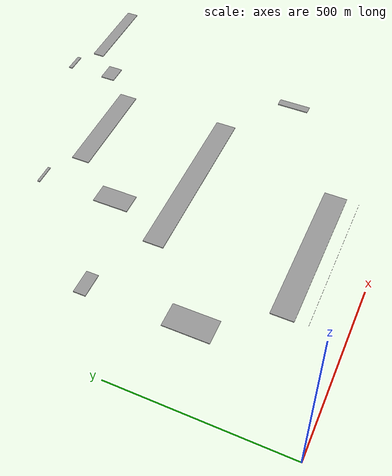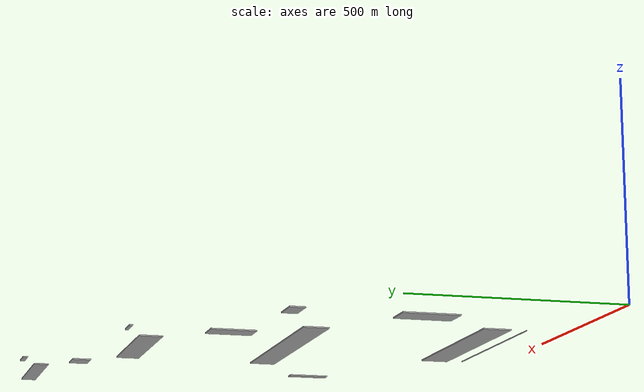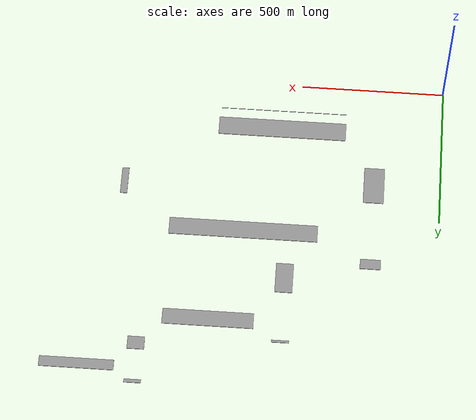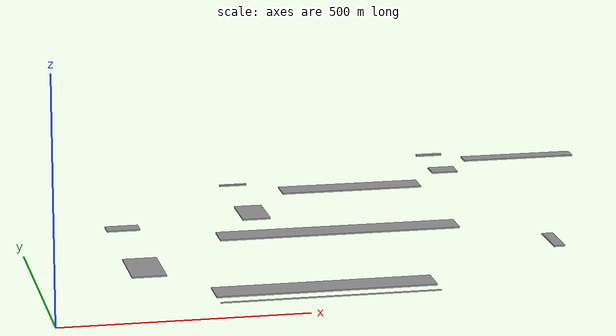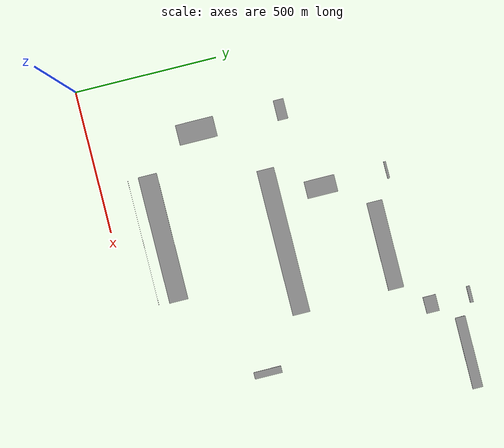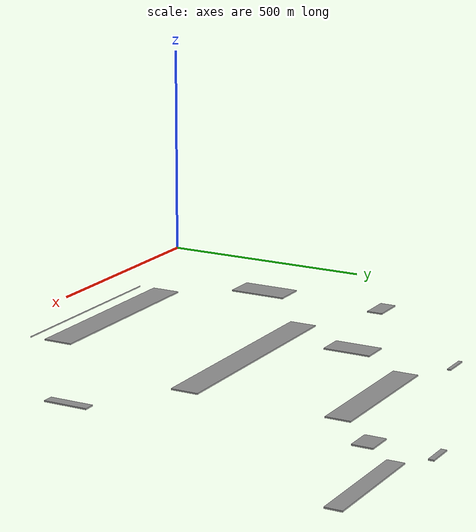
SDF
<?xml version="1.0" encoding="UTF-8"?>
<sdf version="1.6">
    <model name="new_model">
        <pose frame="">0 0 0 0 0 0</pose>
        <link name="wall2">
            <collision name="wall2_collision">
                <geometry>
                    <box>
                        <size>447 0 3</size>
                    </box>
                </geometry>
                <pose frame="">281 50 0 0 0 0</pose>
            </collision>
            <visual name="Wall_2_Visual">
                <pose frame="">281 50 0 0 0 0</pose>
                <geometry>
                    <box>
                        <size>447 0 3</size>
                    </box>
                </geometry>
                <material>
                    <script>
                        <uri>file://media/materials/scripts/gazebo.material</uri>
                        <name>Gazebo/Grey</name>
                    </script>
                    <ambient>1 1 1 1</ambient>
                </material>
                <meta>
                    <layer>0</layer>
                </meta>
            </visual>
            <pose frame="">281 50 0 0 0 0</pose>
        </link>
        <static>1</static>
        <link name="wall3">
            <collision name="wall3_collision">
                <geometry>
                    <box>
                        <size>448 66 3</size>
                    </box>
                </geometry>
                <pose frame="">281 85 0 0 0 0</pose>
            </collision>
            <visual name="Wall_3_Visual">
                <pose frame="">281 85 0 0 0 0</pose>
                <geometry>
                    <box>
                        <size>448 66 3</size>
                    </box>
                </geometry>
                <material>
                    <script>
                        <uri>file://media/materials/scripts/gazebo.material</uri>
                        <name>Gazebo/Grey</name>
                    </script>
                    <ambient>1 1 1 1</ambient>
                </material>
                <meta>
                    <layer>0</layer>
                </meta>
            </visual>
            <pose frame="">281 85 0 0 0 0</pose>
        </link>
        <static>1</static>
        <link name="wall4">
            <collision name="wall4_collision">
                <geometry>
                    <box>
                        <size>71 133 3</size>
                    </box>
                </geometry>
                <pose frame="">115 186 0 0 0 0</pose>
            </collision>
            <visual name="Wall_4_Visual">
                <pose frame="">115 186 0 0 0 0</pose>
                <geometry>
                    <box>
                        <size>71 133 3</size>
                    </box>
                </geometry>
                <material>
                    <script>
                        <uri>file://media/materials/scripts/gazebo.material</uri>
                        <name>Gazebo/Grey</name>
                    </script>
                    <ambient>1 1 1 1</ambient>
                </material>
                <meta>
                    <layer>0</layer>
                </meta>
            </visual>
            <pose frame="">115 186 0 0 0 0</pose>
        </link>
        <static>1</static>
        <link name="wall5">
            <collision name="wall5_collision">
                <geometry>
                    <box>
                        <size>24 97 3</size>
                    </box>
                </geometry>
                <pose frame="">550 204 0 0 0 0</pose>
            </collision>
            <visual name="Wall_5_Visual">
                <pose frame="">550 204 0 0 0 0</pose>
                <geometry>
                    <box>
                        <size>24 97 3</size>
                    </box>
                </geometry>
                <material>
                    <script>
                        <uri>file://media/materials/scripts/gazebo.material</uri>
                        <name>Gazebo/Grey</name>
                    </script>
                    <ambient>1 1 1 1</ambient>
                </material>
                <meta>
                    <layer>0</layer>
                </meta>
            </visual>
            <pose frame="">550 204 0 0 0 0</pose>
        </link>
        <static>1</static>
        <link name="wall6">
            <collision name="wall6_collision">
                <geometry>
                    <box>
                        <size>514 61 3</size>
                    </box>
                </geometry>
                <pose frame="">337 285 0 0 0 0</pose>
            </collision>
            <visual name="Wall_6_Visual">
                <pose frame="">337 285 0 0 0 0</pose>
                <geometry>
                    <box>
                        <size>514 61 3</size>
                    </box>
                </geometry>
                <material>
                    <script>
                        <uri>file://media/materials/scripts/gazebo.material</uri>
                        <name>Gazebo/Grey</name>
                    </script>
                    <ambient>1 1 1 1</ambient>
                </material>
                <meta>
                    <layer>0</layer>
                </meta>
            </visual>
            <pose frame="">337 285 0 0 0 0</pose>
        </link>
        <static>1</static>
        <link name="wall7">
            <collision name="wall7_collision">
                <geometry>
                    <box>
                        <size>71 36 3</size>
                    </box>
                </geometry>
                <pose frame="">115 336 0 0 0 0</pose>
            </collision>
            <visual name="Wall_7_Visual">
                <pose frame="">115 336 0 0 0 0</pose>
                <geometry>
                    <box>
                        <size>71 36 3</size>
                    </box>
                </geometry>
                <material>
                    <script>
                        <uri>file://media/materials/scripts/gazebo.material</uri>
                        <name>Gazebo/Grey</name>
                    </script>
                    <ambient>1 1 1 1</ambient>
                </material>
                <meta>
                    <layer>0</layer>
                </meta>
            </visual>
            <pose frame="">115 336 0 0 0 0</pose>
        </link>
        <static>1</static>
        <link name="wall8">
            <collision name="wall8_collision">
                <geometry>
                    <box>
                        <size>60 107 3</size>
                    </box>
                </geometry>
                <pose frame="">261 371 0 0 0 0</pose>
            </collision>
            <visual name="Wall_8_Visual">
                <pose frame="">261 371 0 0 0 0</pose>
                <geometry>
                    <box>
                        <size>60 107 3</size>
                    </box>
                </geometry>
                <material>
                    <script>
                        <uri>file://media/materials/scripts/gazebo.material</uri>
                        <name>Gazebo/Grey</name>
                    </script>
                    <ambient>1 1 1 1</ambient>
                </material>
                <meta>
                    <layer>0</layer>
                </meta>
            </visual>
            <pose frame="">261 371 0 0 0 0</pose>
        </link>
        <static>1</static>
        <link name="wall9">
            <collision name="wall9_collision">
                <geometry>
                    <box>
                        <size>311 55 3</size>
                    </box>
                </geometry>
                <pose frame="">386 454 0 0 0 0</pose>
            </collision>
            <visual name="Wall_9_Visual">
                <pose frame="">386 454 0 0 0 0</pose>
                <geometry>
                    <box>
                        <size>311 55 3</size>
                    </box>
                </geometry>
                <material>
                    <script>
                        <uri>file://media/materials/scripts/gazebo.material</uri>
                        <name>Gazebo/Grey</name>
                    </script>
                    <ambient>1 1 1 1</ambient>
                </material>
                <meta>
                    <layer>0</layer>
                </meta>
            </visual>
            <pose frame="">386 454 0 0 0 0</pose>
        </link>
        <static>1</static>
        <link name="wall10">
            <collision name="wall10_collision">
                <geometry>
                    <box>
                        <size>60 8 3</size>
                    </box>
                </geometry>
                <pose frame="">261 488 0 0 0 0</pose>
            </collision>
            <visual name="Wall_10_Visual">
                <pose frame="">261 488 0 0 0 0</pose>
                <geometry>
                    <box>
                        <size>60 8 3</size>
                    </box>
                </geometry>
                <material>
                    <script>
                        <uri>file://media/materials/scripts/gazebo.material</uri>
                        <name>Gazebo/Grey</name>
                    </script>
                    <ambient>1 1 1 1</ambient>
                </material>
                <meta>
                    <layer>0</layer>
                </meta>
            </visual>
            <pose frame="">261 488 0 0 0 0</pose>
        </link>
        <static>1</static>
        <link name="wall11">
            <collision name="wall11_collision">
                <geometry>
                    <box>
                        <size>58 45 3</size>
                    </box>
                </geometry>
                <pose frame="">504 506 0 0 0 0</pose>
            </collision>
            <visual name="Wall_11_Visual">
                <pose frame="">504 506 0 0 0 0</pose>
                <geometry>
                    <box>
                        <size>58 45 3</size>
                    </box>
                </geometry>
                <material>
                    <script>
                        <uri>file://media/materials/scripts/gazebo.material</uri>
                        <name>Gazebo/Grey</name>
                    </script>
                    <ambient>1 1 1 1</ambient>
                </material>
                <meta>
                    <layer>0</layer>
                </meta>
            </visual>
            <pose frame="">504 506 0 0 0 0</pose>
        </link>
        <static>1</static>
        <link name="wall12">
            <collision name="wall12_collision">
                <geometry>
                    <box>
                        <size>253 36 3</size>
                    </box>
                </geometry>
                <pose frame="">601 549 0 0 0 0</pose>
            </collision>
            <visual name="Wall_12_Visual">
                <pose frame="">601 549 0 0 0 0</pose>
                <geometry>
                    <box>
                        <size>253 36 3</size>
                    </box>
                </geometry>
                <material>
                    <script>
                        <uri>file://media/materials/scripts/gazebo.material</uri>
                        <name>Gazebo/Grey</name>
                    </script>
                    <ambient>1 1 1 1</ambient>
                </material>
                <meta>
                    <layer>0</layer>
                </meta>
            </visual>
            <pose frame="">601 549 0 0 0 0</pose>
        </link>
        <static>1</static>
        <link name="wall13">
            <collision name="wall13_collision">
                <geometry>
                    <box>
                        <size>58 12 3</size>
                    </box>
                </geometry>
                <pose frame="">504 575 0 0 0 0</pose>
            </collision>
            <visual name="Wall_13_Visual">
                <pose frame="">504 575 0 0 0 0</pose>
                <geometry>
                    <box>
                        <size>58 12 3</size>
                    </box>
                </geometry>
                <material>
                    <script>
                        <uri>file://media/materials/scripts/gazebo.material</uri>
                        <name>Gazebo/Grey</name>
                    </script>
                    <ambient>1 1 1 1</ambient>
                </material>
                <meta>
                    <layer>0</layer>
                </meta>
            </visual>
            <pose frame="">504 575 0 0 0 0</pose>
        </link>
        <static>1</static>
    </model>
</sdf>
